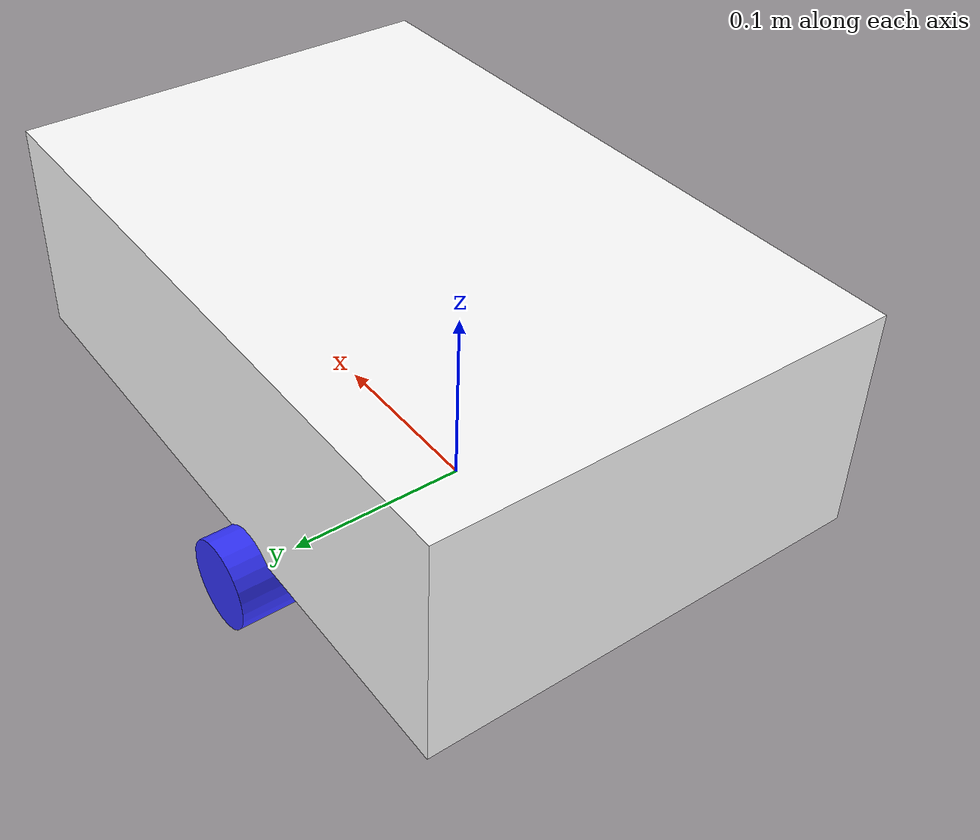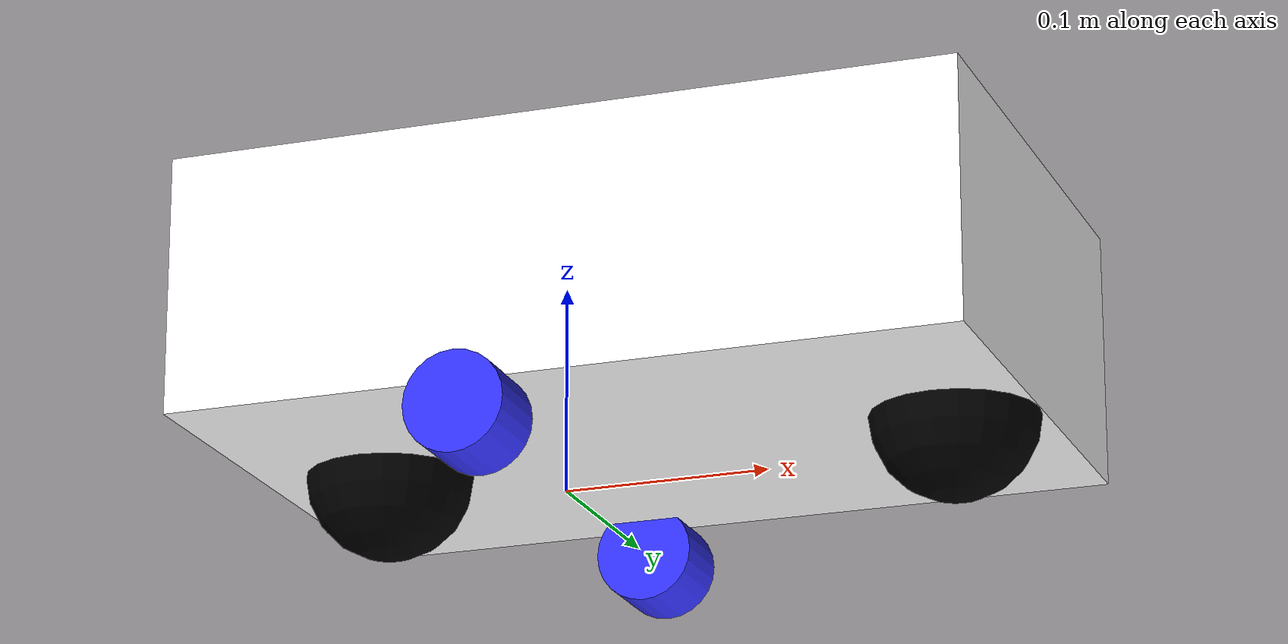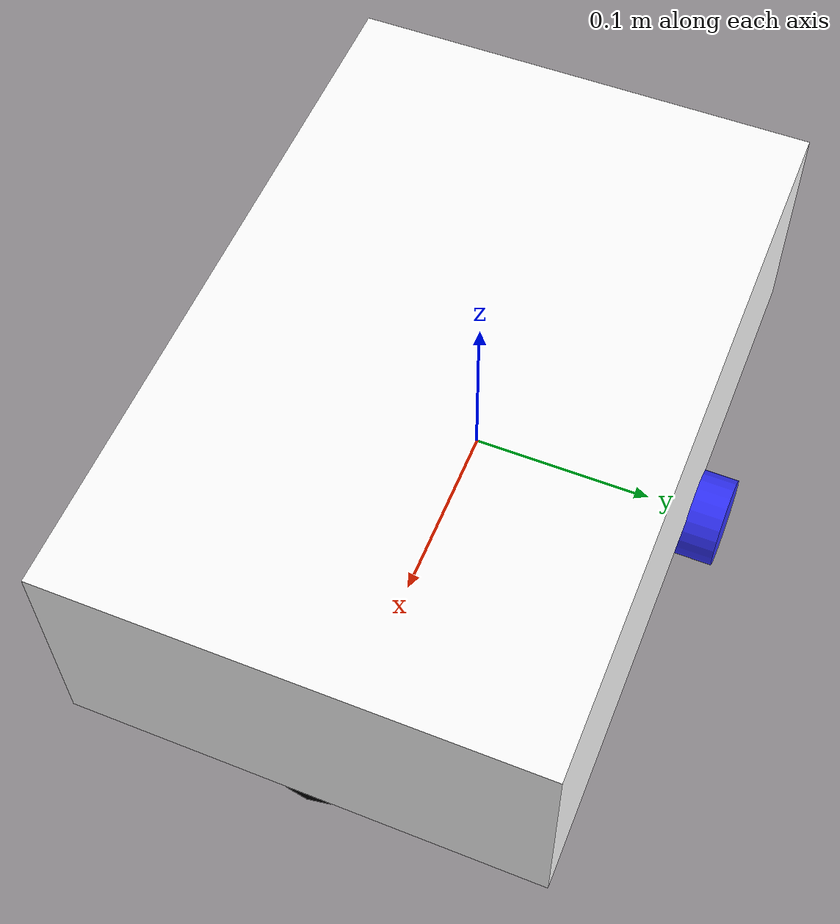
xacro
<?xml version="1.0"?>
<robot xmlns:xacro="http://www.ros.org/wiki/xacro" >

    <xacro:include filename="inertial_macros.xacro"/>

    <material name="white">
        <color rgba="1 1 1 1" />
    </material>

    <material name="orange">
        <color rgba="1 0.3 0.1 1"/>
    </material>

    <material name="blue">
        <color rgba="0.2 0.2 1 1"/>
    </material>

    <material name="black">
        <color rgba="0 0 0 1"/>
    </material>

    <material name="red">
        <color rgba="1 0 0 1"/>
    </material>

    <!-- BASE LINK -->

    <link name="base_link">

    </link>

    <!-- CHASSIS LINK -->

    <joint name="chassis_joint" type="fixed">
        <parent link="base_link"/>
        <child link="chassis"/>
        <origin xyz="-0.150 0 0.016"/>
    </joint>

    <link name="chassis">
        <visual>
            <origin xyz="0.19 0 0.0625"/>
            <geometry>
                <box size="0.38 0.25 0.125"/>
            </geometry>
            <material name="white"/>
        </visual>
        <collision>
            <origin xyz="0.19 0 0.0625"/>
            <geometry>
                <box size="0.38 0.25 0.125"/>
            </geometry>
            <material name="white"/>
        </collision>
        <xacro:inertial_box mass="1.5" x="0.38" y="0.25" z="0.125">
            <origin xyz="0.15 0 0.075" rpy="0 0 0"/>
        </xacro:inertial_box>
    </link>

    <!-- LEFT WHEEL LINK -->

    <joint name="left_wheel_joint" type="continuous">
        <parent link="base_link"/>
        <child link="left_wheel"/>
        <origin xyz="0 0.125 0" rpy="-${pi/2} 0 0" />
        <axis xyz="0 0 1"/>
    </joint>

    <link name="left_wheel">
        <visual>
            <geometry>
                <cylinder radius="0.024" length="0.037"/>
            </geometry>
            <material name="blue"/>
        </visual>
        <collision>
            <geometry>
                <cylinder radius="0.024" length="0.037"/>
            </geometry>
        </collision>
        <xacro:inertial_cylinder mass="0.3" length="0.037" radius="0.024">
            <origin xyz="0 0 0" rpy="0 0 0"/>
        </xacro:inertial_cylinder>
    </link>

    <!-- RIGHT WHEEL LINK -->

    <joint name="right_wheel_joint" type="continuous">
        <parent link="base_link"/>
        <child link="right_wheel"/>
        <origin xyz="0 -0.125 0" rpy="${pi/2} 0 0" />
        <axis xyz="0 0 -1"/>
    </joint>

    <link name="right_wheel">
        <visual>
            <geometry>
                <cylinder radius="0.024" length="0.037"/>
            </geometry>
            <material name="blue"/>
        </visual>
        <collision>
            <geometry>
                <cylinder radius="0.024" length="0.037"/>
            </geometry>
        </collision>
        <xacro:inertial_cylinder mass="0.3" length="0.037" radius="0.024">
            <origin xyz="0 0 0" rpy="0 0 0"/>
        </xacro:inertial_cylinder>
    </link>

    <!-- CASTER WHEEL FRONT LINK -->

    <joint name="caster_wheel_joint_front" type="fixed">
        <parent link="chassis"/>
        <child link="caster_wheel_front"/>
        <origin xyz="0.34 0 0"/>
    </joint>

    <link name="caster_wheel_front">
        <visual>
            <geometry>
                <sphere radius="0.04"/>
            </geometry>
            <material name="black"/>
        </visual>
        <collision>
            <geometry>
                <sphere radius="0.04"/>
            </geometry>
        </collision>
        <xacro:inertial_sphere mass="0.1" radius="0.04">
            <origin xyz="0 0 0" rpy="0 0 0"/>
        </xacro:inertial_sphere>
    </link>

    <!-- CASTER WHEEL REAR LINK -->

    <joint name="caster_wheel_joint_rear" type="fixed">
        <parent link="chassis"/>
        <child link="caster_wheel_rear"/>
        <origin xyz="0.06 0 0"/>
    </joint>

    <link name="caster_wheel_rear">
        <visual>
            <geometry>
                <sphere radius="0.04"/>
            </geometry>
            <material name="black"/>
        </visual>
        <collision>
            <geometry>
                <sphere radius="0.04"/>
            </geometry>
        </collision>
        <xacro:inertial_sphere mass="0.1" radius="0.04">
            <origin xyz="0 0 0" rpy="0 0 0"/>
        </xacro:inertial_sphere>
    </link>

    <!-- SENSORS -->
    <xacro:include filename="sensors.xacro" />

</robot>

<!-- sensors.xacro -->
<robot xmlns:xacro="http://www.ros.org/wiki/xacro">

    <joint name="imu_joint" type="fixed">
        <parent link="chassis"/>
        <child link="imu_link"/>
        <origin xyz="0.224 0.01 0.01" rpy="0 0 ${pi}"/>
    </joint>

    <link name="imu_link">
        <visual>
            <geometry>
                <box size="0.01 0.01 0.005"/>
            </geometry>
            <material name="red"/>
        </visual>
        <collision>
            <geometry>
                <box size="0.01 0.01 0.005"/>
            </geometry>
        </collision>
        <xacro:inertial_box mass="0.01" x="0.01" y="0.01" z="0.005">
            <origin xyz="0 0 0" rpy="0 0 0"/>
        </xacro:inertial_box>
    </link>

    <joint name="camera_joint" type="fixed">
        <parent link="chassis"/>
        <child link="camera_link"/>
        <origin xyz="0.310 0 0.038" rpy="${pi} 0 0"/>
    </joint>

    <link name="camera_link">
        <visual>
            <geometry>
                <box size="0.010 0.030 0.030"/>
            </geometry>
            <material name="red"/>
        </visual>
        <collision>
            <geometry>
                <box size="0.010 0.030 0.030"/>
            </geometry>
        </collision>
    </link>

    <joint name="camera_optical_joint" type="fixed">
        <parent link="camera_link"/>
        <child link="camera_link_optical"/>
        <origin xyz="0 0 0" rpy="${-pi/2} 0 ${-pi/2}"/>
    </joint>

    <link name="camera_link_optical"></link>

</robot>
